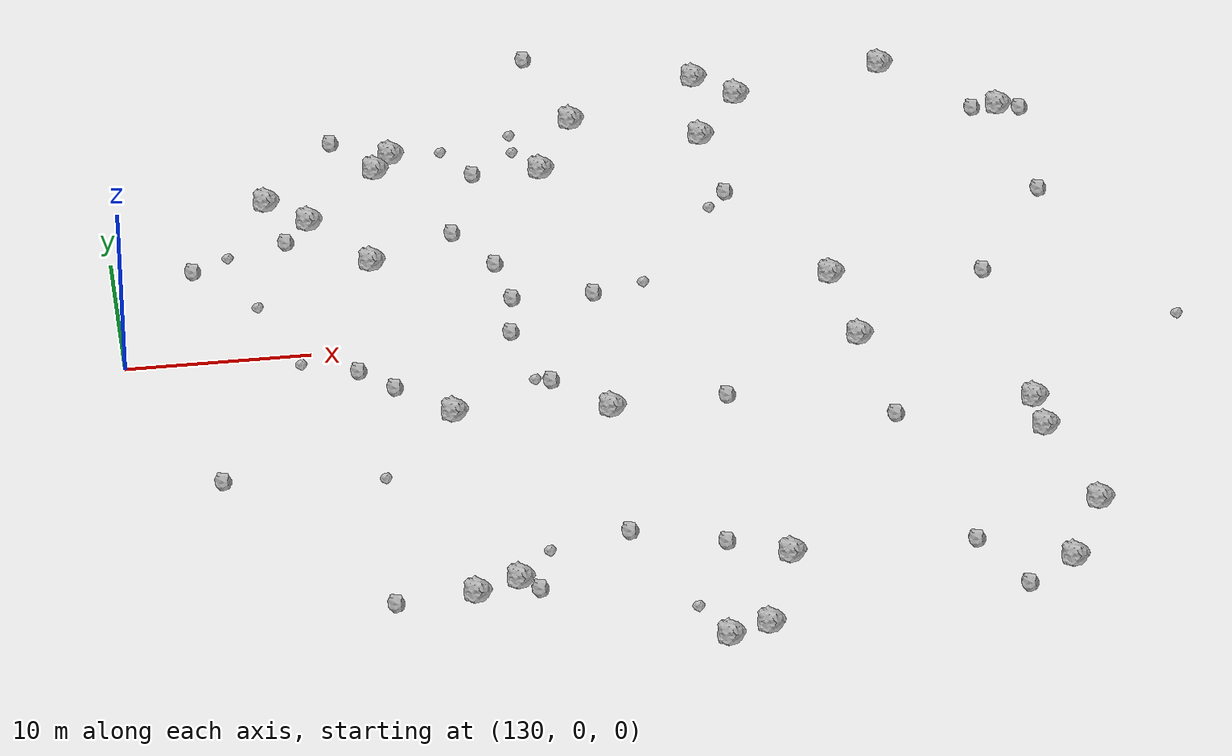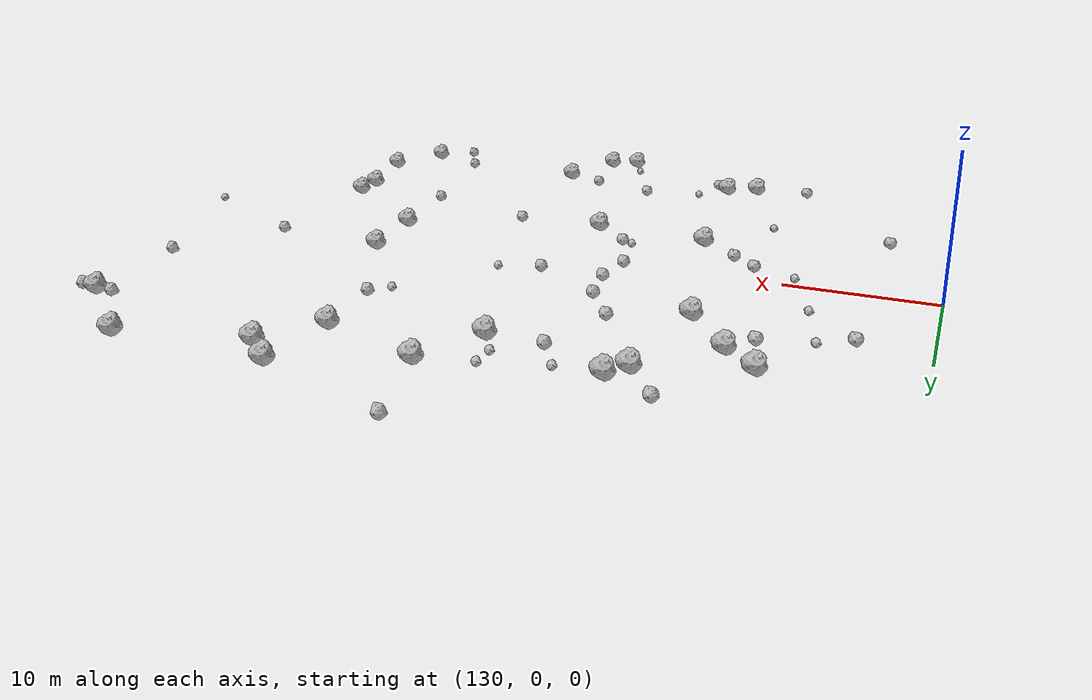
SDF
<sdf version="1.6">
 <world name="default">
  <include><uri>model://sun</uri></include>
  <model name="rock1_4_2">
   <include><uri>model://rock1</uri><pose>154.49925372922257 15.684534883650933 0.5 0 0 0</pose></include>
  </model>
  <model name="rock1_4_3">
   <include><uri>model://rock1</uri><pose>164.33034704092654 23.890762429898935 0.5 0 0 0</pose></include>
  </model>
  <model name="rock1_4_4">
   <include><uri>model://rock1</uri><pose>175.07908992301887 23.88178151579922 0.5 0 0 0</pose></include>
  </model>
  <model name="rock1_4_5">
   <include><uri>model://rock1</uri><pose>169.48047125789935 -2.7483049489834173 0.5 0 0 0</pose></include>
  </model>
  <model name="rock1_4_6">
   <include><uri>model://rock1</uri><pose>155.34656771514867 -7.578321251534007 0.5 0 0 0</pose></include>
  </model>
  <model name="rock1_4_7">
   <include><uri>model://rock1</uri><pose>138.97824659815703 14.502785973552037 0.5 0 0 0</pose></include>
  </model>
  <model name="rock1_4_8">
   <include><uri>model://rock1</uri><pose>158.6064169247937 -28.23213092939782 0.5 0 0 0</pose></include>
  </model>
  <model name="rock1_4_9">
   <include><uri>model://rock1</uri><pose>148.61666277637823 -21.98725871976363 0.5 0 0 0</pose></include>
  </model>
  <model name="rock1_4_10">
   <include><uri>model://rock1</uri><pose>163.86078476238376 17.90766701192497 0.5 0 0 0</pose></include>
  </model>
  <model name="rock1_4_11">
   <include><uri>model://rock1</uri><pose>166.46602358151364 21.832984023297804 0.5 0 0 0</pose></include>
  </model>
  <model name="rock1_4_12">
   <include><uri>model://rock1</uri><pose>145.32862357552952 16.90242368891935 0.5 0 0 0</pose></include>
  </model>
  <model name="rock1_4_13">
   <include><uri>model://rock1</uri><pose>177.20273933990805 -24.067413353798838 0.5 0 0 0</pose></include>
  </model>
  <model name="rock1_4_14">
   <include><uri>model://rock1</uri><pose>146.35333636278446 18.310797130056727 0.5 0 0 0</pose></include>
  </model>
  <model name="rock1_4_15">
   <include><uri>model://rock1</uri><pose>160.77803852643441 -27.496397239750884 0.5 0 0 0</pose></include>
  </model>
  <model name="rock1_4_16">
   <include><uri>model://rock1</uri><pose>177.85998427276257 -12.406661249852785 0.5 0 0 0</pose></include>
  </model>
  <model name="rock1_4_17">
   <include><uri>model://rock1</uri><pose>168.89300603921237 3.2400634112416213 0.5 0 0 0</pose></include>
  </model>
  <model name="rock1_4_18">
   <include><uri>model://rock1</uri><pose>177.76088660916847 -9.787358832419365 0.5 0 0 0</pose></include>
  </model>
  <model name="rock1_4_19">
   <include><uri>model://rock1</uri><pose>146.2749637632736 -22.88132145852138 0.5 0 0 0</pose></include>
  </model>
  <model name="rock1_4_20">
   <include><uri>model://rock1</uri><pose>144.15691414551668 7.903740270536254 0.5 0 0 0</pose></include>
  </model>
  <model name="rock1_4_21">
   <include><uri>model://rock1</uri><pose>181.00968811326612 18.671654510694957 0.5 0 0 0</pose></include>
  </model>
  <model name="rock1_4_22">
   <include><uri>model://rock1</uri><pose>141.15045395687943 12.306679140037474 0.5 0 0 0</pose></include>
  </model>
  <model name="rock1_4_23">
   <include><uri>model://rock1</uri><pose>146.98286134287775 -6.85099600647813 0.5 0 0 0</pose></include>
  </model>
  <model name="rock1_4_24">
   <include><uri>model://rock1</uri><pose>162.78719658651818 -21.708241351141233 0.5 0 0 0</pose></include>
  </model>
  <model name="rock1_4_25">
   <include><uri>model://rock1</uri><pose>156.82873437235241 20.479811697308797 0.5 0 0 0</pose></include>
  </model>
  <model name="rock1_4_26">
   <include><uri>model://rock1</uri><pose>179.45136195728332 -19.287766775545286 0.5 0 0 0</pose></include>
  </model>
  <model name="rock2_4_0">
   <include><uri>model://rock2</uri><pose>149.50540209927394 -22.797628183781786 0.3 0 0 0</pose></include>
  </model>
  <model name="rock2_4_1">
   <include><uri>model://rock2</uri><pose>144.09139182179143 -3.982892355819672 0.3 0 0 0</pose></include>
  </model>
  <model name="rock2_4_2">
   <include><uri>model://rock2</uri><pose>142.3380396770962 -2.2029428533122477 0.3 0 0 0</pose></include>
  </model>
  <model name="rock2_4_3">
   <include><uri>model://rock2</uri><pose>142.04117836110004 -23.042102701435823 0.3 0 0 0</pose></include>
  </model>
  <model name="rock2_4_4">
   <include><uri>model://rock2</uri><pose>181.68574552388094 10.182530366649637 0.3 0 0 0</pose></include>
  </model>
  <model name="rock2_4_5">
   <include><uri>model://rock2</uri><pose>154.74822666231174 -18.49104514064725 0.3 0 0 0</pose></include>
  </model>
  <model name="rock2_4_6">
   <include><uri>model://rock2</uri><pose>177.174672891431 2.684602766491423 0.3 0 0 0</pose></include>
  </model>
  <model name="rock2_4_7">
   <include><uri>model://rock2</uri><pose>150.8738574431879 0.32219114716297526 0.3 0 0 0</pose></include>
  </model>
  <model name="rock2_4_8">
   <include><uri>model://rock2</uri><pose>161.5689614342883 -7.0994656366542515 0.3 0 0 0</pose></include>
  </model>
  <model name="rock2_4_9">
   <include><uri>model://rock2</uri><pose>134.35357447358388 8.447647973766259 0.3 0 0 0</pose></include>
  </model>
  <model name="rock2_4_10">
   <include><uri>model://rock2</uri><pose>152.45550816964996 -4.459538741704275 0.3 0 0 0</pose></include>
  </model>
  <model name="rock2_4_11">
   <include><uri>model://rock2</uri><pose>182.1730367985674 18.488079836644857 0.3 0 0 0</pose></include>
  </model>
  <model name="rock2_4_12">
   <include><uri>model://rock2</uri><pose>150.65118343161612 15.915008481817367 0.3 0 0 0</pose></include>
  </model>
  <model name="rock2_4_13">
   <include><uri>model://rock2</uri><pose>164.35350135945325 12.242129139639339 0.3 0 0 0</pose></include>
  </model>
  <model name="rock2_4_14">
   <include><uri>model://rock2</uri><pose>143.1182249902026 20.150828665280216 0.3 0 0 0</pose></include>
  </model>
  <model name="rock2_4_15">
   <include><uri>model://rock2</uri><pose>139.67411004307024 10.59916772963188 0.3 0 0 0</pose></include>
  </model>
  <model name="rock2_4_16">
   <include><uri>model://rock2</uri><pose>151.33081221141268 3.525126622103933 0.3 0 0 0</pose></include>
  </model>
  <model name="rock2_4_17">
   <include><uri>model://rock2</uri><pose>154.9479366638896 27.327395873834895 0.3 0 0 0</pose></include>
  </model>
  <model name="rock2_4_18">
   <include><uri>model://rock2</uri><pose>148.83925662126623 10.254448538464544 0.3 0 0 0</pose></include>
  </model>
  <model name="rock2_4_19">
   <include><uri>model://rock2</uri><pose>170.19003933615846 -10.033491670102844 0.3 0 0 0</pose></include>
  </model>
  <model name="rock2_4_20">
   <include><uri>model://rock2</uri><pose>172.45457431188217 -21.65676565577289 0.3 0 0 0</pose></include>
  </model>
  <model name="rock2_4_21">
   <include><uri>model://rock2</uri><pose>155.79180197985931 3.423760234733308 0.3 0 0 0</pose></include>
  </model>
  <model name="rock2_4_22">
   <include><uri>model://rock2</uri><pose>174.47005080204607 -25.78974894107666 0.3 0 0 0</pose></include>
  </model>
  <model name="rock2_4_23">
   <include><uri>model://rock2</uri><pose>159.6081396510518 -20.063186190539852 0.3 0 0 0</pose></include>
  </model>
  <model name="rock2_4_24">
   <include><uri>model://rock2</uri><pose>150.81461706489003 6.941271005949467 0.3 0 0 0</pose></include>
  </model>
  <model name="rock2_4_25">
   <include><uri>model://rock2</uri><pose>179.5016556857114 18.81910484548152 0.3 0 0 0</pose></include>
  </model>
  <model name="rock2_4_26">
   <include><uri>model://rock2</uri><pose>134.23146256817887 -11.246372780007523 0.3 0 0 0</pose></include>
  </model>
  <model name="rock3_4_0">
   <include><uri>model://rock3</uri><pose>137.55487596239468 4.590885196354833 0.2 0 0 0</pose></include>
  </model>
  <model name="rock3_4_1">
   <include><uri>model://rock3</uri><pose>153.13066125907673 17.881076180610307 0.2 0 0 0</pose></include>
  </model>
  <model name="rock3_4_2">
   <include><uri>model://rock3</uri><pose>153.16812582816868 19.607837693146728 0.2 0 0 0</pose></include>
  </model>
  <model name="rock3_4_3">
   <include><uri>model://rock3</uri><pose>136.37490505244577 9.547560005483632 0.2 0 0 0</pose></include>
  </model>
  <model name="rock3_4_4">
   <include><uri>model://rock3</uri><pose>142.72707837254254 -12.066164267192566 0.2 0 0 0</pose></include>
  </model>
  <model name="rock3_4_5">
   <include><uri>model://rock3</uri><pose>151.627665021028 -4.21500518360472 0.2 0 0 0</pose></include>
  </model>
  <model name="rock3_4_6">
   <include><uri>model://rock3</uri><pose>186.8721851280975 -2.860289802838345 0.2 0 0 0</pose></include>
  </model>
  <model name="rock3_4_7">
   <include><uri>model://rock3</uri><pose>163.25693690220024 10.891356946818881 0.2 0 0 0</pose></include>
  </model>
  <model name="rock3_4_8">
   <include><uri>model://rock3</uri><pose>149.14388267880085 18.443306334679036 0.2 0 0 0</pose></include>
  </model>
  <model name="rock3_4_9">
   <include><uri>model://rock3</uri><pose>139.35707416856306 -1.1104225613493632 0.2 0 0 0</pose></include>
  </model>
  <model name="rock3_4_10">
   <include><uri>model://rock3</uri><pose>158.63522629141028 4.154474494668115 0.2 0 0 0</pose></include>
  </model>
  <model name="rock3_4_11">
   <include><uri>model://rock3</uri><pose>150.4309790667091 -19.575696370846096 0.2 0 0 0</pose></include>
  </model>
  <model name="rock3_4_12">
   <include><uri>model://rock3</uri><pose>157.34842454051585 -25.346727485161637 0.2 0 0 0</pose></include>
  </model>
 </world>
</sdf>
